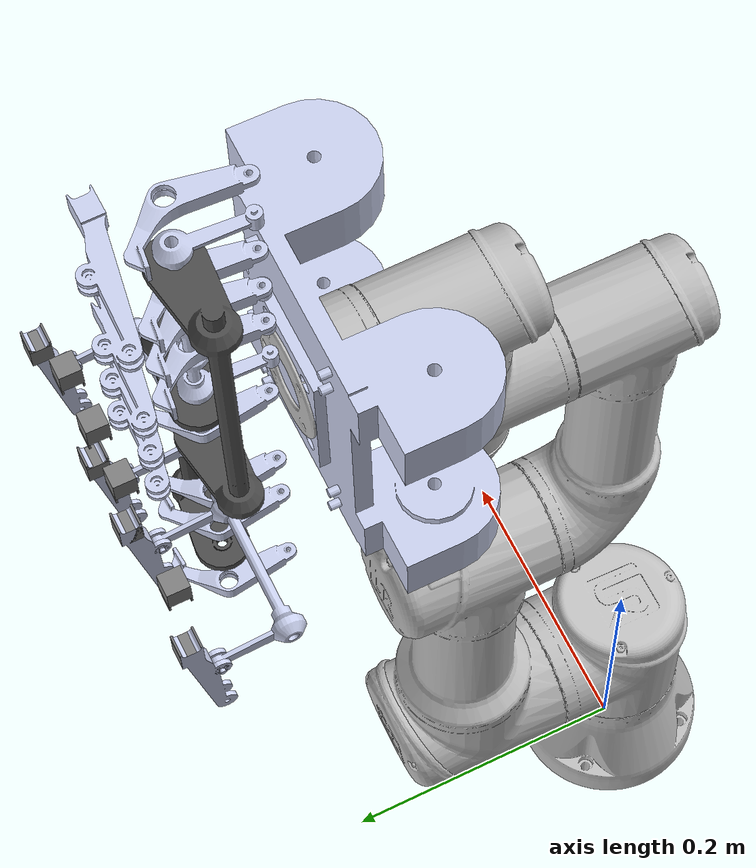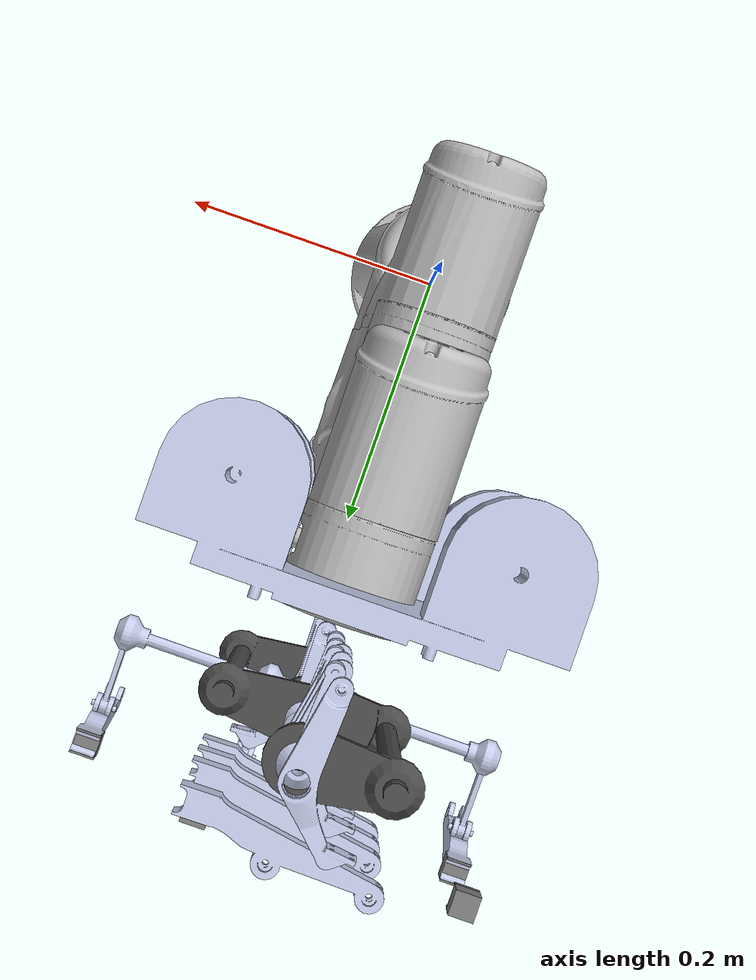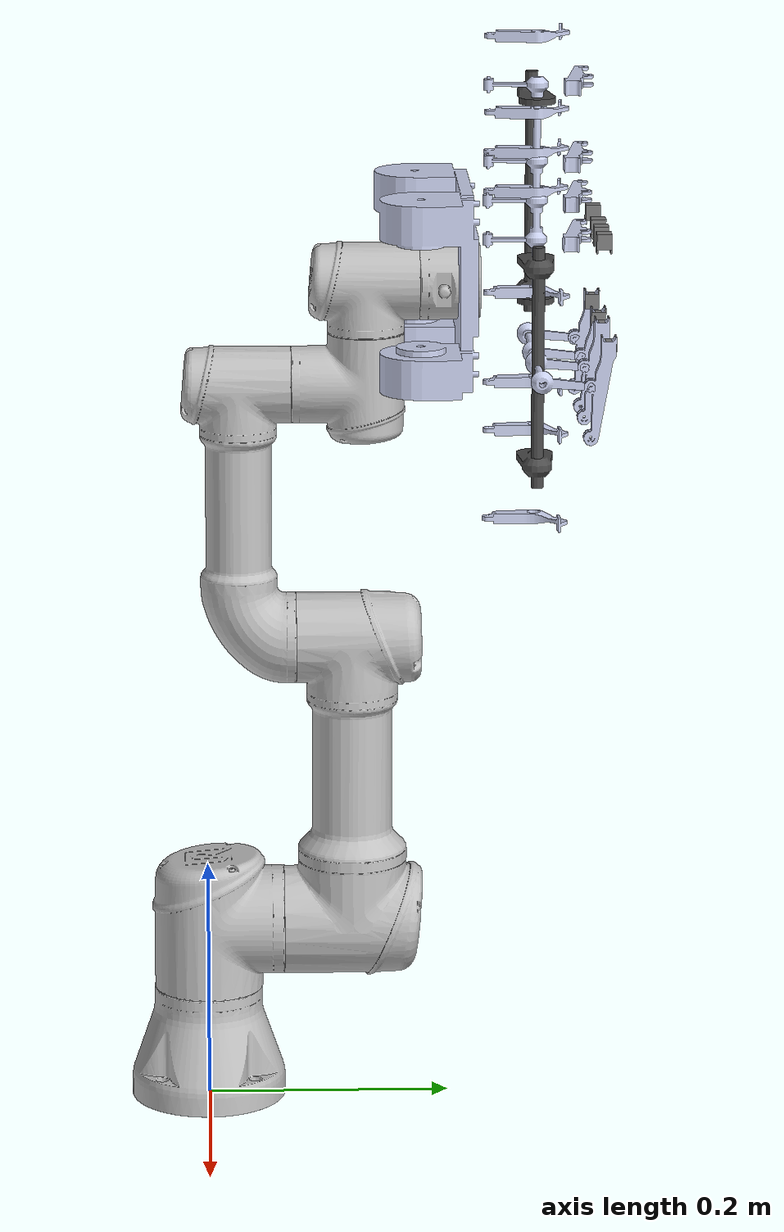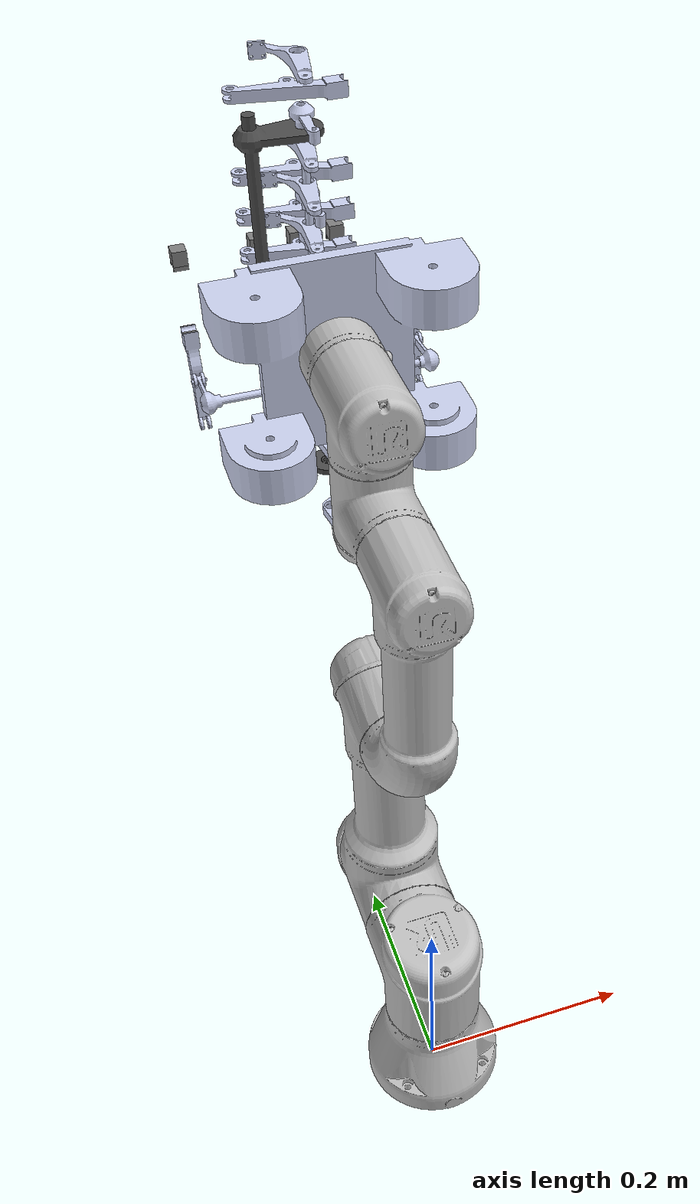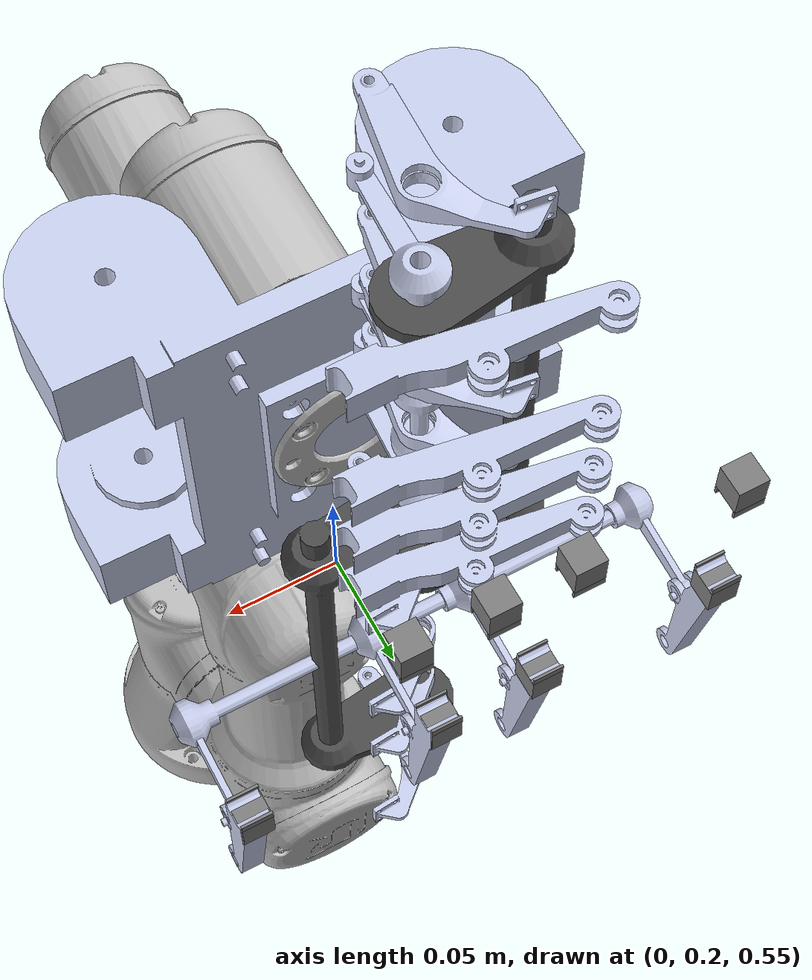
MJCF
<mujoco model="UR3e">
    <compiler angle="radian" meshdir="/home/biorobotics-ms/catkin_ws/src/Wombat_robosuite/robosuite/robosuite/models/assets/robots/ur3e/" />
    <size njmax="500" nconmax="100" />
    <asset>
        <mesh name="base_link" file="meshes/base_link.STL" />
        <mesh name="link_1" file="meshes/link_1.STL" />
        <mesh name="link_2" file="meshes/link_2.STL" />
        <mesh name="link_3" file="meshes/link_3.STL" />
        <mesh name="link_4" file="meshes/link_4.STL" />
        <mesh name="link_5" file="meshes/link_5.STL" />
        <mesh name="link_6" file="meshes/link_6.STL" />
        <mesh name="gripper_base_link" file="meshes/v2_realistic/base_link.STL" />
        <mesh name="left_short_link" file="meshes/v2_realistic/left_short_link.STL" />
        <mesh name="left_gripper_finger" file="meshes/v2_realistic/left_gripper_finger.STL" />
        <mesh name="left_torque_transfer" file="meshes/v2_realistic/left_torque_transfer.STL" />
        <mesh name="left_long_link" file="meshes/v2_realistic/left_long_link.STL" />
        <mesh name="right_short_link" file="meshes/v2_realistic/right_short_link.STL" />
        <mesh name="right_gripper_finger" file="meshes/v2_realistic/right_gripper_finger.STL" />
        <mesh name="right_torque_transfer" file="meshes/v2_realistic/right_torque_transfer.STL" />
        <mesh name="right_long_link" file="meshes/v2_realistic/right_long_link.STL" />

    </asset>
    <actuator>
        <position ctrllimited="true" ctrlrange="-1 1" joint="joint_1" name="torq_1"/>
        <position ctrllimited="true" ctrlrange="-1 1" joint="joint_2" name="torq_2"/>
        <position ctrllimited="true" ctrlrange="-1 1" joint="joint_3" name="torq_3"/>
        <position ctrllimited="true" ctrlrange="-1 1" joint="joint_4" name="torq_4"/>
        <position ctrllimited="true" ctrlrange="-1 1" joint="joint_5" name="torq_5"/>
        <position ctrllimited="true" ctrlrange="-1 1" joint="joint_6" name="torq_6"/>
        <position ctrllimited="true" ctrlrange="-0.74 0.74" joint="base_left_short_joint" kp="15" name="left_finger_joint" forcelimited="true" forcerange="-5 5"/>
        <position ctrllimited="true" ctrlrange="-0.74 0.74" joint="base_right_short_joint" kp="15" name="right_finger_joint" forcelimited="true" forcerange="-5 5"/>
        <position ctrllimited="true" ctrlrange="-0.0001 0.0001" joint="base_left_torque_joint" kp="2" name="left_torque_joint" forcelimited="true" forcerange="-2 2"/>
        <position ctrllimited="true" ctrlrange="-0.0001 0.0001" joint="base_right_torque_joint" kp="2" name="right_torque_joint" forcelimited="true" forcerange="-2 2"/>
    </actuator>
    <worldbody>
        <geom type="mesh" contype="0" conaffinity="0" group="1" rgba="0.752941 0.752941 0.752941 1" mesh="base_link" />
        <body name="link_1" pos="0 0 0.15185">
            <inertial pos="-9.1781e-05 0.0095503 -0.0013428" quat="0.991342 -0.131214 -0.000620085 0.0047793" mass="0.8605" diaginertia="0.00145982 0.0012551 0.00112178" />
            <joint name="joint_1" pos="0 0 0" axis="0 0 1" />
            <geom type="mesh" contype="0" conaffinity="0" group="1" rgba="0.75294 0.75294 0.75294 1" mesh="link_1" />
            <body name="link_2" pos="0 0.11984 0" quat="0.707105 -0.707108 0 0">
                <inertial pos="-1.44519e-06 -0.103645 0.000336769" quat="0.714829 0.699299 -0.00012149 8.88954e-05" mass="1.86258" diaginertia="0.0202441 0.019706 0.00212479" />
                <joint name="joint_2" pos="0 0 0" axis="0 0 1" />
                <geom type="mesh" contype="0" conaffinity="0" group="1" rgba="0.752941 0.752941 0.752941 1" mesh="link_2" />
                <body name="link_3" pos="0 -0.24355 0">
                    <inertial pos="-3.77924e-07 -0.113366 -0.0881411" quat="0.678955 0.73418 -7.57338e-07 -2.01873e-06" mass="0.888803" diaginertia="0.00677877 0.00666106 0.000564566" />
                    <joint name="joint_3" pos="0 0 0" axis="0 0 -1" />
                    <geom type="mesh" contype="0" conaffinity="0" group="1" rgba="0.752941 0.752941 0.752941 1" mesh="link_3" />
                    <body name="link_4" pos="0 -0.2132 0.0112">
                        <inertial pos="6.92604e-08 -3.99721e-05 -0.0124969" quat="0.999117 0.0420086 2.27982e-05 1.33389e-05" mass="0.375061" diaginertia="0.000411774 0.000316518 0.000288002" />
                        <joint name="joint_4" pos="0 0 0" axis="0 0 -1" />
                        <geom type="mesh" contype="0" conaffinity="0" group="1" rgba="0.752941 0.752941 0.752941 1" mesh="link_4" />
                        <body name="link_5" pos="0 -0.08535 0" quat="0.707105 0.707108 0 0">
                            <inertial pos="5.80358e-06 3.22408e-05 -0.00529206" quat="0.69425 0.719718 0.00340321 0.00339428" mass="0.316983" diaginertia="0.000290362 0.000259565 0.000194731" />
                            <joint name="joint_5" pos="0 0 0" axis="0 0 -1" />
                            <geom type="mesh" contype="0" conaffinity="0" group="1" rgba="0.752941 0.752941 0.752941 1" mesh="link_5" />
                            <body name="link_6" pos="0 0 0" quat="0.707105 -0.707108 0 0">
                                <inertial pos="-0.0001531 -1.3912e-05 0.066748" quat="0.477767 0.52316 -0.475721 0.521279" mass="0.14596" diaginertia="7.28001e-05 6.35885e-05 6.30294e-05" />
                                <joint name="joint_6" pos="0 0 0" axis="0 0 -1" />
                                <geom type="mesh" contype="0" conaffinity="0" group="1" rgba="0.75294 0.75294 0.75294 1" mesh="link_6" />

                                <body name="gripper_base_link" pos="0.0 0.0 0.09" quat="0 1 -1 0">
                                    <inertial pos="0 0 0" quat="0 0 0 1" mass="5.016917" diaginertia="1.4281e-05 1.1483e-05 3.1599e-06" />
        <geom type="mesh" group="1" contype="1" conaffinity="1" rgba="0.79216 0.81961 0.93333 1" mesh="gripper_base_link" />
        <geom type="mesh" rgba="0.79216 0.81961 0.93333 1" mesh="gripper_base_link" />
        <body name="left_short_link" pos="-0.06436 0.00045 -0.04775">
            <inertial pos="0 -0.00022 -0.0067619" quat="0.707107 0.707107 0 0" mass="0.016917" diaginertia="1.4281e-05 1.1483e-05 3.1599e-06" />
            <joint name="base_left_short_joint" pos="0 0 0" axis="0 -1 0" />
            <geom type="mesh" group="1" contype="1" conaffinity="1" rgba="0.79216 0.81961 0.93333 1" mesh="left_short_link" />
            <geom type="mesh" rgba="0.79216 0.81961 0.93333 1" mesh="left_short_link" />
            <body name="left_gripper_finger" pos="-0.003 0 -0.039">
                <inertial pos="0.0018228 -0.00018314 -0.0083165" quat="0.457285 0.537087 0.554654 0.441346" mass="0.032218" diaginertia="1.84182e-05 1.82648e-05 6.97848e-07" />
                <joint name="left_short_gripper_joint" pos="0 0 0" axis="0 1 0" />
                <geom type="mesh" group="1" contype="0" conaffinity="0" rgba="0.79216 0.81961 0.93333 1" mesh="left_gripper_finger" />
                <body name="finger_L1" pos="0.03058 0.0938 -0.01361">
                    <inertial pos="0 0 0" quat="0 0 0 1" mass="0.01" diaginertia="0.01 0.01 0.01" />
                    <geom size="0.00627 0.006 0.00601" pos="0 0 0" quat="0 0 0 1" type="box" group="0" solref="0.01 0.5" friction = "2 0.05 0.0001" conaffinity="1" contype="1" name="finger_L1_pad"/>
                </body>
                <body name="finger_L1_top" pos="0.03864 0.0938 -0.00812">
                    <inertial pos="0 0 0" quat="0 0 0 1" mass="0.01" diaginertia="0.01 0.01 0.01" />
                    <geom size="0.00175 0.006 0.00049" pos="0 0 0" quat="0 0 0 1" type="box" group="0" solref="0.01 0.5" friction = "2 0.05 0.0001" conaffinity="1" contype="1" name="finger_L1_pad_top"/>
                </body>
                <body name="finger_L1_bot" pos="0.03864 0.0938 -0.01916">
                    <inertial pos="0 0 0" quat="0 0 0 1" mass="0.01" diaginertia="0.01 0.01 0.01" />
                    <geom size="0.00175 0.006 0.00049" pos="0 0 0" quat="0 0 0 1" type="box" group="0" solref="0.01 0.5" friction = "2 0.05 0.0001" conaffinity="1" contype="1" name="finger_L1_pad_bot"/>
                </body>
                <body name="finger_L2" pos="0.03058 0.02026 -0.01361">
                    <inertial pos="0 0 0" quat="0 0 0 1" mass="0.01" diaginertia="0.01 0.01 0.01" />
                    <geom size="0.00627 0.006 0.00601" pos="0 0 0" quat="0 0 0 1" type="box" group="0" solref="0.01 0.5" friction = "2 0.05 0.0001" conaffinity="1" contype="1" name="finger_L2_pad"/>
                </body>
                <body name="finger_L2_top" pos="0.03864 0.02026 -0.00812">
                    <inertial pos="0 0 0" quat="0 0 0 1" mass="0.01" diaginertia="0.01 0.01 0.01" />
                    <geom size="0.00175 0.006 0.00049" pos="0 0 0" quat="0 0 0 1" type="box" group="0" solref="0.01 0.5" friction = "2 0.05 0.0001" conaffinity="1" contype="1" name="finger_L2_pad_top"/>
                </body>
                <body name="finger_L2_bot" pos="0.03864 0.02026 -0.01916">
                    <inertial pos="0 0 0" quat="0 0 0 1" mass="0.01" diaginertia="0.01 0.01 0.01" />
                    <geom size="0.00175 0.006 0.00049" pos="0 0 0" quat="0 0 0 1" type="box" group="0" solref="0.01 0.5" friction = "2 0.05 0.0001" conaffinity="1" contype="1" name="finger_L2_pad_bot"/>
                </body>
                <body name="finger_L3" pos="0.03058 -0.02026 -0.01361">
                    <inertial pos="0 0 0" quat="0 0 0 1" mass="0.01" diaginertia="0.01 0.01 0.01" />
                    <geom size="0.00627 0.006 0.00601" pos="0 0 0" quat="0 0 0 1" type="box" group="0" solref="0.01 0.5" friction = "2 0.05 0.0001" conaffinity="1" contype="1" name="finger_L3_pad"/>
                </body>
                <body name="finger_L3_top" pos="0.03864 -0.02026 -0.00812">
                    <inertial pos="0 0 0" quat="0 0 0 1" mass="0.01" diaginertia="0.01 0.01 0.01" />
                    <geom size="0.00175 0.006 0.00049" pos="0 0 0" quat="0 0 0 1" type="box" group="0" solref="0.01 0.5" friction = "2 0.05 0.0001" conaffinity="1" contype="1" name="finger_L3_pad_top"/>
                </body>
                <body name="finger_L3_bot" pos="0.03864 -0.02026 -0.01916">
                    <inertial pos="0 0 0" quat="0 0 0 1" mass="0.01" diaginertia="0.01 0.01 0.01" />
                    <geom size="0.00175 0.006 0.00049" pos="0 0 0" quat="0 0 0 1" type="box" group="0" solref="0.01 0.5" friction = "2 0.05 0.0001" conaffinity="1" contype="1" name="finger_L3_pad_bot"/>
                </body>
                <body name="finger_L4" pos="0.03058 -0.0938 -0.01361">
                    <inertial pos="0 0 0" quat="0 0 0 1" mass="0.01" diaginertia="0.01 0.01 0.01" />
                    <geom size="0.00627 0.006 0.00601" pos="0 0 0" quat="0 0 0 1" type="box" group="0" solref="0.01 0.5" friction = "2 0.05 0.0001" conaffinity="1" contype="1" name="finger_L4_pad"/>
                </body>
                <body name="finger_L4_top" pos="0.03864 -0.0938 -0.00812">
                    <inertial pos="0 0 0" quat="0 0 0 1" mass="0.01" diaginertia="0.01 0.01 0.01" />
                    <geom size="0.00175 0.006 0.00049" pos="0 0 0" quat="0 0 0 1" type="box" group="0" solref="0.01 0.5" friction = "2 0.05 0.0001" conaffinity="1" contype="1" name="finger_L4_pad_top"/>
                </body>
                <body name="finger_L4_bot" pos="0.03864 -0.0938 -0.01916">
                    <inertial pos="0 0 0" quat="0 0 0 1" mass="0.01" diaginertia="0.01 0.01 0.01" />
                    <geom size="0.00175 0.006 0.00049" pos="0 0 0" quat="0 0 0 1" type="box" group="0" solref="0.01 0.5" friction = "2 0.05 0.0001" conaffinity="1" contype="1" name="finger_L4_pad_bot"/>
                </body>
            </body>
        </body>
        <body name="left_torque_transfer" pos="-0.06436 0.00045 -0.04775">
            <inertial pos="-0.02908 0.0010114 0" quat="0.499372 0.500627 -0.499372 0.500627" mass="0.047419" diaginertia="0.00025664 0.000245251 1.44445e-05" />
            <joint name="base_left_torque_joint" pos="0 0 0" axis="0 -1 0" />
            <geom type="mesh" group="1" contype="1" conaffinity="0" rgba="0.29804 0.29804 0.29804 1" mesh="left_torque_transfer" />
            <geom type="mesh" rgba="0.29804 0.29804 0.29804 1" mesh="left_torque_transfer" />
            <body name="left_long_link" pos="-0.039 0 0">
                <inertial pos="-0.0045033 -0.00021999 -0.0085751" quat="0.699747 -0.101753 -0.101753 0.699747" mass="0.018801" diaginertia="6.4197e-06 5.88492e-06 7.30177e-07" />
                <joint name="left_torque_long_joint" pos="0 0 0" axis="0 1 0" />
                <geom type="mesh" group="1" contype="1" conaffinity="1" rgba="0.79216 0.81961 0.93333 1" mesh="left_long_link" />
                <geom type="mesh" rgba="0.79216 0.81961 0.93333 1" mesh="left_long_link" />
            </body>
        </body>
        <body name="right_short_link" pos="0.06564 0.00045 -0.04775">
            <inertial pos="0 0.016533 -0.0067619" quat="0.70813 0.706082 0 0" mass="0.016917" diaginertia="1.4281e-05 1.14831e-05 3.15983e-06" />
            <joint name="base_right_short_joint" pos="0 0 0" axis="0 -1 0" />
            <geom type="mesh" group="1" contype="1" conaffinity="1" rgba="0.79216 0.81961 0.93333 1" mesh="right_short_link" />
            <geom type="mesh" rgba="0.79216 0.81961 0.93333 1" mesh="right_short_link" />
            <body name="right_gripper_finger" pos="0.003 0 -0.039">
                <inertial pos="-0.0018228 0.023251 -0.0083165" quat="0.537087 0.457285 0.441346 0.554654" mass="0.032218" diaginertia="1.84182e-05 1.82648e-05 6.97848e-07" />
                <joint name="right_short_gripper_joint" pos="0 0 0" axis="0 1 0" />
                <geom type="mesh" group="1" contype="0" conaffinity="0" rgba="0.79216 0.81961 0.93333 1" mesh="right_gripper_finger" />
                 <body name="finger_R1" pos="-0.03058 0.0938 -0.01361">
                    <inertial pos="0 0 0" quat="0 0 0 1" mass="0.01" diaginertia="0.01 0.01 0.01" />
                    <geom size="0.00627 0.006 0.00601" pos="0 0 0" quat="0 0 0 1" type="box" group="0" solref="0.01 0.5" friction = "2 0.05 0.0001" conaffinity="1" contype="1" name="finger_R1_pad"/>
                </body>
                <body name="finger_R1_top" pos="-0.03864 0.0938 -0.00812">
                    <inertial pos="0 0 0" quat="0 0 0 1" mass="0.01" diaginertia="0.01 0.01 0.01" />
                    <geom size="0.00175 0.006 0.00049" pos="0 0 0" quat="0 0 0 1" type="box" group="0" solref="0.01 0.5" friction = "2 0.05 0.0001" conaffinity="1" contype="1" name="finger_R1_pad_top"/>
                </body>
                <body name="finger_R1_bot" pos="-0.03864 0.0938 -0.01916">
                    <inertial pos="0 0 0" quat="0 0 0 1" mass="0.01" diaginertia="0.01 0.01 0.01" />
                    <geom size="0.00175 0.006 0.00049" pos="0 0 0" quat="0 0 0 1" type="box" group="0" solref="0.01 0.5" friction = "2 0.05 0.0001" conaffinity="1" contype="1" name="finger_R1_pad_bot"/>
                </body>
                <body name="finger_R2" pos="-0.03058 0.03199 -0.01361">
                    <inertial pos="0 0 0" quat="0 0 0 1" mass="0.01" diaginertia="0.01 0.01 0.01" />
                    <geom size="0.00627 0.006 0.00601" pos="0 0 0" quat="0 0 0 1" type="box" group="0" solref="0.01 0.5" friction = "2 0.05 0.0001" conaffinity="1" contype="1" name="finger_R2_pad"/>
                </body>
                <body name="finger_R2_top" pos="-0.03864 0.03199 -0.00812">
                    <inertial pos="0 0 0" quat="0 0 0 1" mass="0.01" diaginertia="0.01 0.01 0.01" />
                    <geom size="0.00175 0.006 0.00049" pos="0 0 0" quat="0 0 0 1" type="box" group="0" solref="0.01 0.5" friction = "2 0.05 0.0001" conaffinity="1" contype="1" name="finger_R2_pad_top"/>
                </body>
                <body name="finger_R2_bot" pos="-0.03864 0.03199 -0.01916">
                    <inertial pos="0 0 0" quat="0 0 0 1" mass="0.01" diaginertia="0.01 0.01 0.01" />
                    <geom size="0.00175 0.006 0.00049" pos="0 0 0" quat="0 0 0 1" type="box" group="0" solref="0.01 0.5" friction = "2 0.05 0.0001" conaffinity="1" contype="1" name="finger_R2_pad_bot"/>
                </body>
                <body name="finger_R3" pos="-0.03058 0 -0.01361">
                    <inertial pos="0 0 0" quat="0 0 0 1" mass="0.01" diaginertia="0.01 0.01 0.01" />
                    <geom size="0.00627 0.006 0.00601" pos="0 0 0" quat="0 0 0 1" type="box" group="0" solref="0.01 0.5" friction = "2 0.05 0.0001" conaffinity="1" contype="1" name="finger_R3_pad"/>
                </body>
                <body name="finger_R3_top" pos="-0.03864 0 -0.00812">
                    <inertial pos="0 0 0" quat="0 0 0 1" mass="0.01" diaginertia="0.01 0.01 0.01" />
                    <geom size="0.00175 0.006 0.00049" pos="0 0 0" quat="0 0 0 1" type="box" group="0" solref="0.01 0.5" friction = "2 0.05 0.0001" conaffinity="1" contype="1" name="finger_R3_pad_top"/>
                </body>
                <body name="finger_R3_bot" pos="-0.03864 0 -0.01916">
                    <inertial pos="0 0 0" quat="0 0 0 1" mass="0.01" diaginertia="0.01 0.01 0.01" />
                    <geom size="0.00175 0.006 0.00049" pos="0 0 0" quat="0 0 0 1" type="box" group="0" solref="0.01 0.5" friction = "2 0.05 0.0001" conaffinity="1" contype="1" name="finger_R3_pad_bot"/>
                </body>
                <body name="finger_R4" pos="-0.03058 -0.03243 -0.01361">
                    <inertial pos="0 0 0" quat="0 0 0 1" mass="0.01" diaginertia="0.01 0.01 0.01" />
                    <geom size="0.00627 0.006 0.00601" pos="0 0 0" quat="0 0 0 1" type="box" group="0" solref="0.01 0.5" friction = "2 0.05 0.0001" conaffinity="1" contype="1" name="finger_R4_pad"/>
                </body>
                <body name="finger_R4_top" pos="-0.03864 -0.03243 -0.00812">
                    <inertial pos="0 0 0" quat="0 0 0 1" mass="0.01" diaginertia="0.01 0.01 0.01" />
                    <geom size="0.00175 0.006 0.00049" pos="0 0 0" quat="0 0 0 1" type="box" group="0" solref="0.01 0.5" friction = "2 0.05 0.0001" conaffinity="1" contype="1" name="finger_R4_pad_top"/>
                </body>
                <body name="finger_R4_bot" pos="-0.03864 -0.03243 -0.01916">
                    <inertial pos="0 0 0" quat="0 0 0 1" mass="0.01" diaginertia="0.01 0.01 0.01" />
                    <geom size="0.00175 0.006 0.00049" pos="0 0 0" quat="0 0 0 1" type="box" group="0" solref="0.01 0.5" friction = "2 0.05 0.0001" conaffinity="1" contype="1" name="finger_R4_pad_bot"/>
                </body>
            </body>
        </body>
        <body name="right_torque_transfer" pos="0.06564 0.00045 -0.04775">
            <inertial pos="0.02908 -0.0014514 0" quat="0.499372 0.500627 -0.499372 0.500627" mass="0.047419" diaginertia="0.00025664 0.000245251 1.44445e-05" />
            <joint name="base_right_torque_joint" pos="0 0 0" axis="0 -1 0" />
            <geom type="mesh" group="1" contype="1" conaffinity="1" rgba="0.29804 0.29804 0.29804 1" mesh="right_torque_transfer" />
            <geom type="mesh" rgba="0.29804 0.29804 0.29804 1" mesh="right_torque_transfer" />
            <body name="right_long_link" pos="0.039 0 0">
                <inertial pos="0.0045033 0.023287 -0.0085751" quat="0.699747 0.101753 0.101753 0.699747" mass="0.018801" diaginertia="6.4197e-06 5.88492e-06 7.30177e-07" />
                <joint name="right_torque_long_joint" pos="0 0 0" axis="0 -1 0" />
                <geom type="mesh" group="1" contype="1" conaffinity="0" rgba="0.79216 0.81961 0.93333 1" mesh="right_long_link" />
                <geom type="mesh" rgba="0.79216 0.81961 0.93333 1" mesh="right_long_link" />
            </body>
        </body>

                                <body name="right_hand" pos="0 0 0.09" quat="0 0 0 1" >
                                        <!-- This sites were added for visualization. They are all standardized between models-->
                                        <!-- Position mimics the gripper attachment point (right_hand) -->
                                        <!--  Y-axis should be perpendicular to grasping motion, and Z-axis should point out of the robot eef -->
                                        <site name="ee" pos="0 0 0" size="0.01 0.01 0.01" rgba="0 0 1 1" type="sphere" group="1"/>
                                        <site name="ee_x" pos="0 0 0" size="0.005 .1"  quat="0.707105 0.707108 0 0 " rgba="1 0 0 0" type="cylinder" group="1"/>
                                        <site name="ee_z" pos="0 0 0" size="0.005 .1" quat="0.707105 0 0 0.707108" rgba="0 0 1 0" type="cylinder" group="1"/>
                                        <site name="ee_y" pos="0 0 0" size="0.005 .1" quat="0.707105 0 0.707108 0 " rgba="0 1 0 0" type="cylinder" group="1"/>
                                        <!-- This camera points out from the eef. -->
                                        <camera mode="fixed" name="eye_in_hand" pos="0.05 0 0" quat="0 0.707108 0.707108 0" fovy="75"/>
                                        <!-- To add gripper -->
                                    </body>
                                </body>
                            </body>
                        </body>
                    </body>
                </body>
            </body>
        </body>
    </worldbody>
    <equality>
        <connect body1="left_long_link" body2="left_gripper_finger" active="true" solref='0.005 1' anchor="-0.005 0 -0.039"/>
        <connect body1="right_long_link" body2="right_gripper_finger" active="true" solref='0.005 1' anchor="0.005 0 -0.039"/>
    </equality>
    <contact>
        <exclude body1="gripper_base_link" body2="left_short_link"/>
        <exclude body1="gripper_base_link" body2="right_short_link"/>
        <exclude body1="gripper_base_link" body2="left_torque_transfer"/>
        <exclude body1="gripper_base_link" body2="right_torque_transfer"/>
        <exclude body1="gripper_base_link" body2="left_long_link"/>
        <exclude body1="gripper_base_link" body2="right_long_link"/>
        <exclude body1="gripper_base_link" body2="left_gripper_finger"/>
        <exclude body1="gripper_base_link" body2="right_gripper_finger"/>

        <exclude body1="left_long_link" body2="left_short_link"/>
        <exclude body1="left_long_link" body2="right_short_link"/>
        <exclude body1="left_long_link" body2="left_torque_transfer"/>
        <exclude body1="left_long_link" body2="right_torque_transfer"/>
        <exclude body1="left_long_link" body2="right_long_link"/>
        <exclude body1="left_long_link" body2="left_gripper_finger"/>
        <exclude body1="left_long_link" body2="right_gripper_finger"/>

        <exclude body1="left_short_link" body2="right_short_link"/>
        <exclude body1="left_short_link" body2="left_torque_transfer"/>
        <exclude body1="left_short_link" body2="right_torque_transfer"/>
        <exclude body1="left_short_link" body2="right_long_link"/>
        <exclude body1="left_short_link" body2="left_gripper_finger"/>
        <exclude body1="left_short_link" body2="right_gripper_finger"/>

        <exclude body1="left_torque_transfer" body2="right_short_link"/>
        <exclude body1="left_torque_transfer" body2="right_torque_transfer"/>
        <exclude body1="left_torque_transfer" body2="right_long_link"/>
        <exclude body1="left_torque_transfer" body2="left_gripper_finger"/>
        <exclude body1="left_torque_transfer" body2="right_gripper_finger"/>

        <exclude body1="left_gripper_finger" body2="right_short_link"/>
        <exclude body1="left_gripper_finger" body2="right_long_link"/>
        <exclude body1="left_gripper_finger" body2="right_torque_transfer"/>
        <exclude body1="left_gripper_finger" body2="right_gripper_finger"/>

        <exclude body1="right_long_link" body2="right_short_link"/>
        <exclude body1="right_long_link" body2="right_torque_transfer"/>
        <exclude body1="right_long_link" body2="right_gripper_finger"/>

        <exclude body1="right_short_link" body2="right_torque_transfer"/>
        <exclude body1="right_short_link" body2="right_gripper_finger"/>

        <exclude body1="right_torque_transfer" body2="right_gripper_finger"/>
    </contact>
</mujoco>
